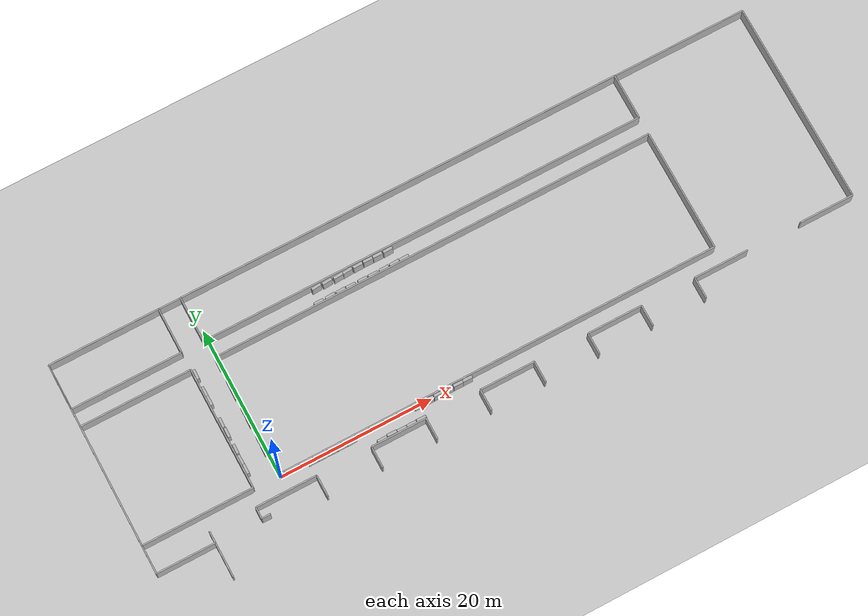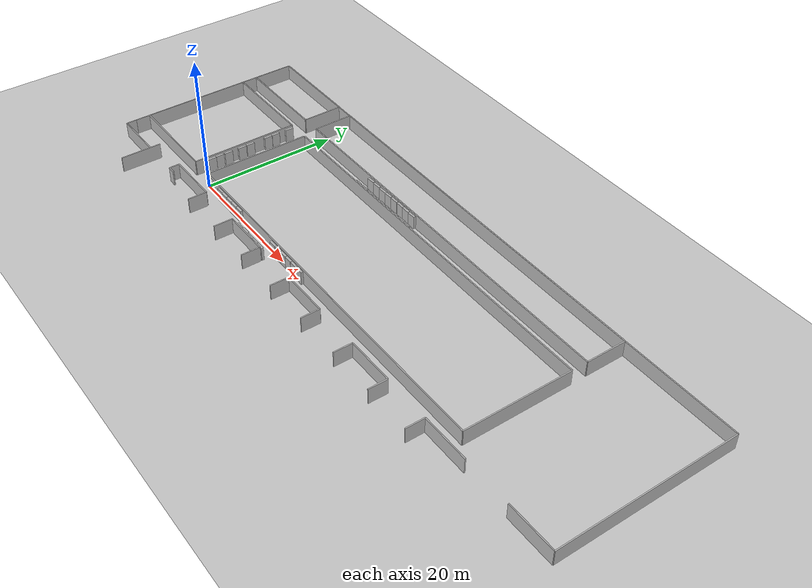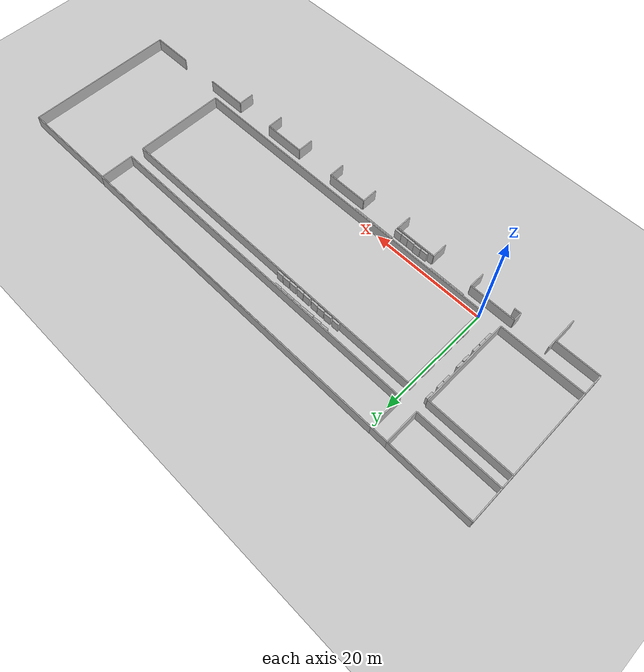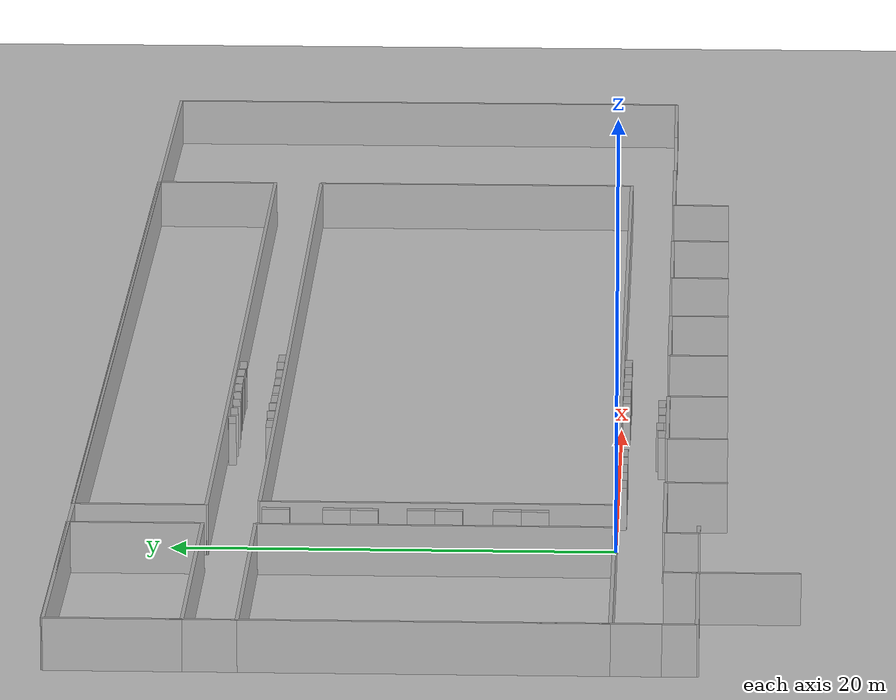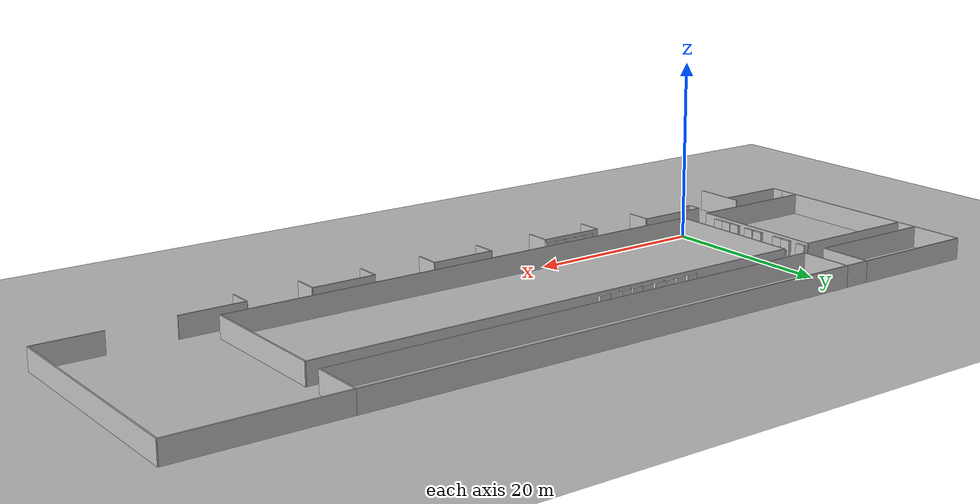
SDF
<sdf version="1.6">
 <world name="default">
  <model name="ground_plane">
   <static>1</static>
   <link name="link">
    <collision name="collision">
     <geometry><plane><normal>0 0 1</normal><size>100 100</size></plane></geometry>
     <surface><friction><ode><mu>100</mu><mu2>50</mu2></ode></friction></surface>
    </collision>
    <visual name="visual">
     <cast_shadows>0</cast_shadows>
     <geometry><plane><normal>0 0 1</normal><size>100 100</size></plane></geometry>
     <material>
      <script><uri>file://media/materials/scripts/gazebo.material</uri><name>Gazebo/Grey</name></script>
     </material>
    </visual>
   </link>
  </model>
  <model name="model_0">
   <pose>0 0 1 0 -0 0</pose>
   <link name="Wall_0">
    <pose>28.988 0 0 0 -0 0</pose>
    <collision name="Wall_0_Collision"><geometry><box><size>57.976 0.169 2.5</size></box></geometry></collision>
    <visual name="Wall_0_Visual"><geometry><box><size>57.976 0.169 2.5</size></box></geometry></visual>
   </link>
   <link name="Wall_1">
    <pose>28.988 16 0 0 -0 0</pose>
    <collision name="Wall_1_Collision"><geometry><box><size>57.976 0.169 2.5</size></box></geometry></collision>
    <visual name="Wall_1_Visual"><geometry><box><size>57.976 0.169 2.5</size></box></geometry></visual>
   </link>
   <link name="Wall_2">
    <pose>0 8 0 0 -0 1.5707</pose>
    <collision name="Wall_2_Collision"><geometry><box><size>16 0.169 2.5</size></box></geometry></collision>
    <visual name="Wall_2_Visual"><geometry><box><size>16 0.169 2.5</size></box></geometry></visual>
   </link>
   <link name="Wall_3">
    <pose>57.976 8 0 0 -0 1.5707</pose>
    <collision name="Wall_3_Collision"><geometry><box><size>16 0.169 2.5</size></box></geometry></collision>
    <visual name="Wall_3_Visual"><geometry><box><size>16 0.169 2.5</size></box></geometry></visual>
   </link>
   <static>1</static>
  </model>
  <model name="model_2">
   <pose>-17.962 0 1 0 -0 0</pose>
   <link name="Wall_0">
    <pose>7.219 0 0 0 -0 0</pose>
    <collision name="Wall_0_Collision"><geometry><box><size>14.438 0.169 2.5</size></box></geometry></collision>
    <visual name="Wall_0_Visual"><geometry><box><size>14.438 0.169 2.5</size></box></geometry></visual>
   </link>
   <link name="Wall_1">
    <pose>7.219 16 0 0 -0 0</pose>
    <collision name="Wall_1_Collision"><geometry><box><size>14.438 0.169 2.5</size></box></geometry></collision>
    <visual name="Wall_1_Visual"><geometry><box><size>14.438 0.169 2.5</size></box></geometry></visual>
   </link>
   <link name="Wall_2">
    <pose>0 8 0 0 -0 1.5707</pose>
    <collision name="Wall_2_Collision"><geometry><box><size>16 0.169 2.5</size></box></geometry></collision>
    <visual name="Wall_2_Visual"><geometry><box><size>16 0.169 2.5</size></box></geometry></visual>
   </link>
   <link name="Wall_3">
    <pose>14.438 8 0 0 -0 1.5707</pose>
    <collision name="Wall_3_Collision"><geometry><box><size>16 0.169 2.5</size></box></geometry></collision>
    <visual name="Wall_3_Visual"><geometry><box><size>16 0.169 2.5</size></box></geometry></visual>
   </link>
   <static>1</static>
  </model>
  <model name="model_3">
   <pose>-17.962 18.362 1 0 -0 0</pose>
   <link name="Wall_0">
    <pose>7.219 0 0 0 -0 0</pose>
    <collision name="Wall_0_Collision"><geometry><box><size>14.438 0.169 2.5</size></box></geometry></collision>
    <visual name="Wall_0_Visual"><geometry><box><size>14.438 0.169 2.5</size></box></geometry></visual>
   </link>
   <link name="Wall_1">
    <pose>7.219 6 0 0 -0 0</pose>
    <collision name="Wall_1_Collision"><geometry><box><size>14.438 0.169 2.5</size></box></geometry></collision>
    <visual name="Wall_1_Visual"><geometry><box><size>14.438 0.169 2.5</size></box></geometry></visual>
   </link>
   <link name="Wall_2">
    <pose>0 3 0 0 -0 1.5707</pose>
    <collision name="Wall_2_Collision"><geometry><box><size>6 0.169 2.5</size></box></geometry></collision>
    <visual name="Wall_2_Visual"><geometry><box><size>6 0.169 2.5</size></box></geometry></visual>
   </link>
   <link name="Wall_3">
    <pose>14.438 3 0 0 -0 1.5707</pose>
    <collision name="Wall_3_Collision"><geometry><box><size>6 0.169 2.5</size></box></geometry></collision>
    <visual name="Wall_3_Visual"><geometry><box><size>6 0.169 2.5</size></box></geometry></visual>
   </link>
   <static>1</static>
  </model>
  <model name="model_4">
   <pose>-0.636 18.362 1 0 -0 0</pose>
   <link name="Wall_0">
    <pose>29.306 0 0 0 -0 0</pose>
    <collision name="Wall_0_Collision"><geometry><box><size>58.612 0.169 2.5</size></box></geometry></collision>
    <visual name="Wall_0_Visual"><geometry><box><size>58.612 0.169 2.5</size></box></geometry></visual>
   </link>
   <link name="Wall_1">
    <pose>29.306 6 0 0 -0 0</pose>
    <collision name="Wall_1_Collision"><geometry><box><size>58.612 0.169 2.5</size></box></geometry></collision>
    <visual name="Wall_1_Visual"><geometry><box><size>58.612 0.169 2.5</size></box></geometry></visual>
   </link>
   <link name="Wall_2">
    <pose>0 3 0 0 -0 1.5707</pose>
    <collision name="Wall_2_Collision"><geometry><box><size>6 0.169 2.5</size></box></geometry></collision>
    <visual name="Wall_2_Visual"><geometry><box><size>6 0.169 2.5</size></box></geometry></visual>
   </link>
   <link name="Wall_3">
    <pose>58.612 3 0 0 -0 1.5707</pose>
    <collision name="Wall_3_Collision"><geometry><box><size>6 0.169 2.5</size></box></geometry></collision>
    <visual name="Wall_3_Visual"><geometry><box><size>6 0.169 2.5</size></box></geometry></visual>
   </link>
   <static>1</static>
  </model>
  <model name="model_6">
   <pose>-17.962 -2.202 1 0 -0 0</pose>
   <link name="Wall_0">
    <pose>0 -0.755 0 0 -0 1.5707</pose>
    <collision name="Wall_0_Collision"><geometry><box><size>1.51 0.169 2.5</size></box></geometry></collision>
    <visual name="Wall_0_Visual"><geometry><box><size>1.51 0.169 2.5</size></box></geometry></visual>
   </link>
   <link name="Wall_1">
    <pose>3.809 -1.51 0 0 -0 0</pose>
    <collision name="Wall_1_Collision"><geometry><box><size>7.618 0.169 2.5</size></box></geometry></collision>
    <visual name="Wall_1_Visual"><geometry><box><size>7.618 0.169 2.5</size></box></geometry></visual>
   </link>
   <link name="Wall_2">
    <pose>7.618 -3.005 0 0 -0 1.5707</pose>
    <collision name="Wall_2_Collision"><geometry><box><size>6.01 0.169 2.5</size></box></geometry></collision>
    <visual name="Wall_2_Visual"><geometry><box><size>6.01 0.169 2.5</size></box></geometry></visual>
   </link>
   <link name="Wall_3">
    <pose>13.638 -0.755 0 0 -0 1.5707</pose>
    <collision name="Wall_3_Collision"><geometry><box><size>1.51 0.169 2.5</size></box></geometry></collision>
    <visual name="Wall_3_Visual"><geometry><box><size>1.51 0.169 2.5</size></box></geometry></visual>
   </link>
   <link name="Wall_4">
    <pose>14.214 -1.51 0 0 -0 0</pose>
    <collision name="Wall_4_Collision"><geometry><box><size>1.152 0.169 2.5</size></box></geometry></collision>
    <visual name="Wall_4_Visual"><geometry><box><size>1.152 0.169 2.5</size></box></geometry></visual>
   </link>
   <link name="Wall_5">
    <pose>17.619 0 0 0 -0 0</pose>
    <collision name="Wall_5_Collision"><geometry><box><size>7.962 0.169 2.5</size></box></geometry></collision>
    <visual name="Wall_5_Visual"><geometry><box><size>7.962 0.169 2.5</size></box></geometry></visual>
   </link>
   <link name="Wall_6">
    <pose>21.6 -1.39375 0 0 -0 1.5707</pose>
    <collision name="Wall_6_Collision"><geometry><box><size>2.7875 0.169 2.5</size></box></geometry></collision>
    <visual name="Wall_6_Visual"><geometry><box><size>2.7875 0.169 2.5</size></box></geometry></visual>
   </link>
   <link name="Wall_7">
    <pose>28.8 -1.39375 0 0 -0 1.5707</pose>
    <collision name="Wall_7_Collision"><geometry><box><size>2.7875 0.169 2.5</size></box></geometry></collision>
    <visual name="Wall_7_Visual"><geometry><box><size>2.7875 0.169 2.5</size></box></geometry></visual>
   </link>
   <link name="Wall_8">
    <pose>32.4 0 0 0 -0 0</pose>
    <collision name="Wall_8_Collision"><geometry><box><size>7.2 0.169 2.5</size></box></geometry></collision>
    <visual name="Wall_8_Visual"><geometry><box><size>7.2 0.169 2.5</size></box></geometry></visual>
   </link>
   <link name="Wall_9">
    <pose>36 -1.39375 0 0 -0 1.5707</pose>
    <collision name="Wall_9_Collision"><geometry><box><size>2.7875 0.169 2.5</size></box></geometry></collision>
    <visual name="Wall_9_Visual"><geometry><box><size>2.7875 0.169 2.5</size></box></geometry></visual>
   </link>
   <link name="Wall_10">
    <pose>43.2 -1.39375 0 0 -0 1.5707</pose>
    <collision name="Wall_10_Collision"><geometry><box><size>2.7875 0.169 2.5</size></box></geometry></collision>
    <visual name="Wall_10_Visual"><geometry><box><size>2.7875 0.169 2.5</size></box></geometry></visual>
   </link>
   <link name="Wall_11">
    <pose>46.8 0 0 0 -0 0</pose>
    <collision name="Wall_11_Collision"><geometry><box><size>7.2 0.169 2.5</size></box></geometry></collision>
    <visual name="Wall_11_Visual"><geometry><box><size>7.2 0.169 2.5</size></box></geometry></visual>
   </link>
   <link name="Wall_12">
    <pose>50.4 -1.39375 0 0 -0 1.5707</pose>
    <collision name="Wall_12_Collision"><geometry><box><size>2.7875 0.169 2.5</size></box></geometry></collision>
    <visual name="Wall_12_Visual"><geometry><box><size>2.7875 0.169 2.5</size></box></geometry></visual>
   </link>
   <link name="Wall_13">
    <pose>57.6 -1.39375 0 0 -0 1.5707</pose>
    <collision name="Wall_13_Collision"><geometry><box><size>2.7875 0.169 2.5</size></box></geometry></collision>
    <visual name="Wall_13_Visual"><geometry><box><size>2.7875 0.169 2.5</size></box></geometry></visual>
   </link>
   <link name="Wall_14">
    <pose>61.2 0 0 0 -0 0</pose>
    <collision name="Wall_14_Collision"><geometry><box><size>7.2 0.169 2.5</size></box></geometry></collision>
    <visual name="Wall_14_Visual"><geometry><box><size>7.2 0.169 2.5</size></box></geometry></visual>
   </link>
   <link name="Wall_15">
    <pose>64.8 -1.39375 0 0 -0 1.5707</pose>
    <collision name="Wall_15_Collision"><geometry><box><size>2.7875 0.169 2.5</size></box></geometry></collision>
    <visual name="Wall_15_Visual"><geometry><box><size>2.7875 0.169 2.5</size></box></geometry></visual>
   </link>
   <link name="Wall_16">
    <pose>72 -1.39375 0 0 -0 1.5707</pose>
    <collision name="Wall_16_Collision"><geometry><box><size>2.7875 0.169 2.5</size></box></geometry></collision>
    <visual name="Wall_16_Visual"><geometry><box><size>2.7875 0.169 2.5</size></box></geometry></visual>
   </link>
   <link name="Wall_17">
    <pose>75.6 0 0 0 -0 0</pose>
    <collision name="Wall_17_Collision"><geometry><box><size>7.2 0.169 2.5</size></box></geometry></collision>
    <visual name="Wall_17_Visual"><geometry><box><size>7.2 0.169 2.5</size></box></geometry></visual>
   </link>
   <link name="Wall_18">
    <pose>90 0 0 0 -0 0</pose>
    <collision name="Wall_18_Collision"><geometry><box><size>7.2 0.169 2.5</size></box></geometry></collision>
    <visual name="Wall_18_Visual"><geometry><box><size>7.2 0.169 2.5</size></box></geometry></visual>
   </link>
   <static>1</static>
  </model>
  <model name="model_7">
   <pose>-17.962 -2.202 1 0 -0 0</pose>
   <link name="Wall_0">
    <pose>0 13.27 0 0 -0 1.5707</pose>
    <collision name="Wall_0_Collision"><geometry><box><size>26.54 0.16 2.5</size></box></geometry></collision>
    <visual name="Wall_0_Visual"><geometry><box><size>26.54 0.16 2.5</size></box></geometry></visual>
   </link>
   <link name="Wall_1">
    <pose>46.8 26.54 0 0 -0 0</pose>
    <collision name="Wall_1_Collision"><geometry><box><size>93.6 0.16 2.5</size></box></geometry></collision>
    <visual name="Wall_1_Visual"><geometry><box><size>93.6 0.16 2.5</size></box></geometry></visual>
   </link>
   <link name="Wall_3">
    <pose>93.6 13.27 0 0 -0 1.5707</pose>
    <collision name="Wall_3_Collision"><geometry><box><size>26.54 0.16 2.5</size></box></geometry></collision>
    <visual name="Wall_3_Visual"><geometry><box><size>26.54 0.16 2.5</size></box></geometry></visual>
   </link>
   <static>1</static>
  </model>
  <model name="unit_box_clone_1">
   <pose>13.7109 -1.85674 0.999996 0 6e-06 -5.9e-05</pose>
   <link name="link">
    <inertial>
     <mass>1</mass>
     <inertia>
      <ixx>0.166667</ixx>
      <ixy>0</ixy>
      <ixz>0</ixz>
      <iyy>0.166667</iyy>
      <iyz>0</iyz>
      <izz>0.166667</izz>
     </inertia>
    </inertial>
    <collision name="collision"><geometry><box><size>1.25 0.35 2</size></box></geometry></collision>
    <visual name="visual"><geometry><box><size>1.25 0.35 2</size></box></geometry></visual>
   </link>
  </model>
  <model name="unit_box_clone">
   <pose>22.0074 -0.27117 0.999996 -0 -6e-06 -4.9e-05</pose>
   <link name="link">
    <inertial>
     <mass>1</mass>
     <inertia>
      <ixx>0.166667</ixx>
      <ixy>0</ixy>
      <ixz>0</ixz>
      <iyy>0.166667</iyy>
      <iyz>0</iyz>
      <izz>0.166667</izz>
     </inertia>
    </inertial>
    <collision name="collision"><geometry><box><size>1.25 0.35 2</size></box></geometry></collision>
    <visual name="visual"><geometry><box><size>1.25 0.35 2</size></box></geometry></visual>
   </link>
  </model>
  <model name="unit_box_clone_11_clone_14">
   <pose>23.711 18.0787 0.999995 0 -2e-06 0.037657</pose>
   <link name="link">
    <inertial>
     <mass>1</mass>
     <inertia>
      <ixx>0.166667</ixx>
      <ixy>0</ixy>
      <ixz>0</ixz>
      <iyy>0.166667</iyy>
      <iyz>0</iyz>
      <izz>0.166667</izz>
     </inertia>
    </inertial>
    <collision name="collision"><geometry><box><size>1.25 0.35 2</size></box></geometry></collision>
    <visual name="visual"><geometry><box><size>1.25 0.35 2</size></box></geometry></visual>
   </link>
  </model>
  <model name="unit_box_clone_11_clone_15">
   <pose>23.6489 16.3031 1 1e-06 0 0.068985</pose>
   <link name="link">
    <inertial>
     <mass>1</mass>
     <inertia>
      <ixx>0.166667</ixx>
      <ixy>0</ixy>
      <ixz>0</ixz>
      <iyy>0.166667</iyy>
      <iyz>0</iyz>
      <izz>0.166667</izz>
     </inertia>
    </inertial>
    <collision name="collision"><geometry><box><size>1.25 0.35 2</size></box></geometry></collision>
    <visual name="visual"><geometry><box><size>1.25 0.35 2</size></box></geometry></visual>
   </link>
  </model>
  <model name="unit_box_clone_11_clone_16">
   <pose>22.3421 18.1015 0.999996 0 6e-06 -4.9e-05</pose>
   <link name="link">
    <inertial>
     <mass>1</mass>
     <inertia>
      <ixx>0.166667</ixx>
      <ixy>0</ixy>
      <ixz>0</ixz>
      <iyy>0.166667</iyy>
      <iyz>0</iyz>
      <izz>0.166667</izz>
     </inertia>
    </inertial>
    <collision name="collision"><geometry><box><size>1.25 0.35 2</size></box></geometry></collision>
    <visual name="visual"><geometry><box><size>1.25 0.35 2</size></box></geometry></visual>
   </link>
  </model>
  <model name="unit_box_clone_11_clone_17">
   <pose>22.2418 16.2769 0.999998 0 -4e-06 0.027685</pose>
   <link name="link">
    <inertial>
     <mass>1</mass>
     <inertia>
      <ixx>0.166667</ixx>
      <ixy>0</ixy>
      <ixz>0</ixz>
      <iyy>0.166667</iyy>
      <iyz>0</iyz>
      <izz>0.166667</izz>
     </inertia>
    </inertial>
    <collision name="collision"><geometry><box><size>1.25 0.35 2</size></box></geometry></collision>
    <visual name="visual"><geometry><box><size>1.25 0.35 2</size></box></geometry></visual>
   </link>
  </model>
  <model name="unit_box_clone_11_clone_18">
   <pose>20.7664 16.2598 0.999996 -0 6e-06 -1.6e-05</pose>
   <link name="link">
    <inertial>
     <mass>1</mass>
     <inertia>
      <ixx>0.166667</ixx>
      <ixy>0</ixy>
      <ixz>0</ixz>
      <iyy>0.166667</iyy>
      <iyz>0</iyz>
      <izz>0.166667</izz>
     </inertia>
    </inertial>
    <collision name="collision"><geometry><box><size>1.25 0.35 2</size></box></geometry></collision>
    <visual name="visual"><geometry><box><size>1.25 0.35 2</size></box></geometry></visual>
   </link>
  </model>
  <model name="unit_box_clone_11_clone_19">
   <pose>21.0428 18.1013 0.999996 0 6e-06 6.1e-05</pose>
   <link name="link">
    <inertial>
     <mass>1</mass>
     <inertia>
      <ixx>0.166667</ixx>
      <ixy>0</ixy>
      <ixz>0</ixz>
      <iyy>0.166667</iyy>
      <iyz>0</iyz>
      <izz>0.166667</izz>
     </inertia>
    </inertial>
    <collision name="collision"><geometry><box><size>1.25 0.35 2</size></box></geometry></collision>
    <visual name="visual"><geometry><box><size>1.25 0.35 2</size></box></geometry></visual>
   </link>
  </model>
  <model name="unit_box_clone_11_clone_20">
   <pose>19.4063 16.2596 0.999996 0 -6e-06 -4.2e-05</pose>
   <link name="link">
    <inertial>
     <mass>1</mass>
     <inertia>
      <ixx>0.166667</ixx>
      <ixy>0</ixy>
      <ixz>0</ixz>
      <iyy>0.166667</iyy>
      <iyz>0</iyz>
      <izz>0.166667</izz>
     </inertia>
    </inertial>
    <collision name="collision"><geometry><box><size>1.25 0.35 2</size></box></geometry></collision>
    <visual name="visual"><geometry><box><size>1.25 0.35 2</size></box></geometry></visual>
   </link>
  </model>
  <model name="unit_box_clone_11_clone_21">
   <pose>17.8003 16.2604 0.999996 0 -2e-06 -8.2e-05</pose>
   <link name="link">
    <inertial>
     <mass>1</mass>
     <inertia>
      <ixx>0.166667</ixx>
      <ixy>0</ixy>
      <ixz>0</ixz>
      <iyy>0.166667</iyy>
      <iyz>0</iyz>
      <izz>0.166667</izz>
     </inertia>
    </inertial>
    <collision name="collision"><geometry><box><size>1.25 0.35 2</size></box></geometry></collision>
    <visual name="visual"><geometry><box><size>1.25 0.35 2</size></box></geometry></visual>
   </link>
  </model>
  <model name="unit_box_clone_11_clone_22">
   <pose>19.6929 18.0816 0.999997 0 -5e-06 0.033077</pose>
   <link name="link">
    <inertial>
     <mass>1</mass>
     <inertia>
      <ixx>0.166667</ixx>
      <ixy>0</ixy>
      <ixz>0</ixz>
      <iyy>0.166667</iyy>
      <iyz>0</iyz>
      <izz>0.166667</izz>
     </inertia>
    </inertial>
    <collision name="collision"><geometry><box><size>1.25 0.35 2</size></box></geometry></collision>
    <visual name="visual"><geometry><box><size>1.25 0.35 2</size></box></geometry></visual>
   </link>
  </model>
  <model name="unit_box_clone_11_clone_23">
   <pose>18.2945 18.0562 0.999998 0 3e-06 0.073835</pose>
   <link name="link">
    <inertial>
     <mass>1</mass>
     <inertia>
      <ixx>0.166667</ixx>
      <ixy>0</ixy>
      <ixz>0</ixz>
      <iyy>0.166667</iyy>
      <iyz>0</iyz>
      <izz>0.166667</izz>
     </inertia>
    </inertial>
    <collision name="collision"><geometry><box><size>1.25 0.35 2</size></box></geometry></collision>
    <visual name="visual"><geometry><box><size>1.25 0.35 2</size></box></geometry></visual>
   </link>
  </model>
  <model name="unit_box_clone_11_clone_24">
   <pose>17.0436 18.0196 0.999997 0 -4e-06 0.073693</pose>
   <link name="link">
    <inertial>
     <mass>1</mass>
     <inertia>
      <ixx>0.166667</ixx>
      <ixy>0</ixy>
      <ixz>0</ixz>
      <iyy>0.166667</iyy>
      <iyz>0</iyz>
      <izz>0.166667</izz>
     </inertia>
    </inertial>
    <collision name="collision"><geometry><box><size>1.25 0.35 2</size></box></geometry></collision>
    <visual name="visual"><geometry><box><size>1.25 0.35 2</size></box></geometry></visual>
   </link>
  </model>
  <model name="unit_box_clone_11_clone_25">
   <pose>16.4932 16.2862 1 0 -0 0.042515</pose>
   <link name="link">
    <inertial>
     <mass>1</mass>
     <inertia>
      <ixx>0.166667</ixx>
      <ixy>0</ixy>
      <ixz>0</ixz>
      <iyy>0.166667</iyy>
      <iyz>0</iyz>
      <izz>0.166667</izz>
     </inertia>
    </inertial>
    <collision name="collision"><geometry><box><size>1.25 0.35 2</size></box></geometry></collision>
    <visual name="visual"><geometry><box><size>1.25 0.35 2</size></box></geometry></visual>
   </link>
  </model>
  <model name="unit_box_clone_11_clone_26">
   <pose>15.5675 18.0384 1 0 -0 0.075277</pose>
   <link name="link">
    <inertial>
     <mass>1</mass>
     <inertia>
      <ixx>0.166667</ixx>
      <ixy>0</ixy>
      <ixz>0</ixz>
      <iyy>0.166667</iyy>
      <iyz>0</iyz>
      <izz>0.166667</izz>
     </inertia>
    </inertial>
    <collision name="collision"><geometry><box><size>1.25 0.35 2</size></box></geometry></collision>
    <visual name="visual"><geometry><box><size>1.25 0.35 2</size></box></geometry></visual>
   </link>
  </model>
  <model name="unit_box_clone_11_clone_27">
   <pose>15.0677 16.2994 1 0 -0 0.060356</pose>
   <link name="link">
    <inertial>
     <mass>1</mass>
     <inertia>
      <ixx>0.166667</ixx>
      <ixy>0</ixy>
      <ixz>0</ixz>
      <iyy>0.166667</iyy>
      <iyz>0</iyz>
      <izz>0.166667</izz>
     </inertia>
    </inertial>
    <collision name="collision"><geometry><box><size>1.25 0.35 2</size></box></geometry></collision>
    <visual name="visual"><geometry><box><size>1.25 0.35 2</size></box></geometry></visual>
   </link>
  </model>
  <model name="unit_box_clone_11_clone_28">
   <pose>14.1457 18.0566 1 0 -0 0.071586</pose>
   <link name="link">
    <inertial>
     <mass>1</mass>
     <inertia>
      <ixx>0.166667</ixx>
      <ixy>0</ixy>
      <ixz>0</ixz>
      <iyy>0.166667</iyy>
      <iyz>0</iyz>
      <izz>0.166667</izz>
     </inertia>
    </inertial>
    <collision name="collision"><geometry><box><size>1.25 0.35 2</size></box></geometry></collision>
    <visual name="visual"><geometry><box><size>1.25 0.35 2</size></box></geometry></visual>
   </link>
  </model>
  <model name="unit_box_clone_11_clone_29">
   <pose>13.536 16.2707 0.999996 -0 -2e-06 0.017689</pose>
   <link name="link">
    <inertial>
     <mass>1</mass>
     <inertia>
      <ixx>0.166667</ixx>
      <ixy>0</ixy>
      <ixz>0</ixz>
      <iyy>0.166667</iyy>
      <iyz>0</iyz>
      <izz>0.166667</izz>
     </inertia>
    </inertial>
    <collision name="collision"><geometry><box><size>1.25 0.35 2</size></box></geometry></collision>
    <visual name="visual"><geometry><box><size>1.25 0.35 2</size></box></geometry></visual>
   </link>
  </model>
  <model name="unit_box_clone_1_clone">
   <pose>6.68095 -0.260339 0.999996 -0 6e-06 4.9e-05</pose>
   <link name="link">
    <inertial>
     <mass>1</mass>
     <inertia>
      <ixx>0.166667</ixx>
      <ixy>0</ixy>
      <ixz>0</ixz>
      <iyy>0.166667</iyy>
      <iyz>0</iyz>
      <izz>0.166667</izz>
     </inertia>
    </inertial>
    <collision name="collision"><geometry><box><size>1.25 0.35 2</size></box></geometry></collision>
    <visual name="visual"><geometry><box><size>1.25 0.35 2</size></box></geometry></visual>
   </link>
  </model>
  <model name="unit_box_clone_1_clone_0">
   <pose>5.39075 -0.263233 0.999998 0 4e-06 0.003933</pose>
   <link name="link">
    <inertial>
     <mass>1</mass>
     <inertia>
      <ixx>0.166667</ixx>
      <ixy>0</ixy>
      <ixz>0</ixz>
      <iyy>0.166667</iyy>
      <iyz>0</iyz>
      <izz>0.166667</izz>
     </inertia>
    </inertial>
    <collision name="collision"><geometry><box><size>1.25 0.35 2</size></box></geometry></collision>
    <visual name="visual"><geometry><box><size>1.25 0.35 2</size></box></geometry></visual>
   </link>
  </model>
  <model name="unit_box_clone_1_clone_1">
   <pose>7.94834 -0.260406 0.999996 -0 2e-06 -7.7e-05</pose>
   <link name="link">
    <inertial>
     <mass>1</mass>
     <inertia>
      <ixx>0.166667</ixx>
      <ixy>0</ixy>
      <ixz>0</ixz>
      <iyy>0.166667</iyy>
      <iyz>0</iyz>
      <izz>0.166667</izz>
     </inertia>
    </inertial>
    <collision name="collision"><geometry><box><size>1.25 0.35 2</size></box></geometry></collision>
    <visual name="visual"><geometry><box><size>1.25 0.35 2</size></box></geometry></visual>
   </link>
  </model>
  <model name="unit_box_clone_1_clone_2">
   <pose>12.3948 -1.94213 1 1e-06 -0 -2.1e-05</pose>
   <link name="link">
    <inertial>
     <mass>1</mass>
     <inertia>
      <ixx>0.166667</ixx>
      <ixy>0</ixy>
      <ixz>0</ixz>
      <iyy>0.166667</iyy>
      <iyz>0</iyz>
      <izz>0.166667</izz>
     </inertia>
    </inertial>
    <collision name="collision"><geometry><box><size>1.25 0.35 2</size></box></geometry></collision>
    <visual name="visual"><geometry><box><size>1.25 0.35 2</size></box></geometry></visual>
   </link>
  </model>
  <model name="unit_box_clone_1_clone_3">
   <pose>14.9959 -1.94196 0.999996 -0 -6e-06 -4.9e-05</pose>
   <link name="link">
    <inertial>
     <mass>1</mass>
     <inertia>
      <ixx>0.166667</ixx>
      <ixy>0</ixy>
      <ixz>0</ixz>
      <iyy>0.166667</iyy>
      <iyz>0</iyz>
      <izz>0.166667</izz>
     </inertia>
    </inertial>
    <collision name="collision"><geometry><box><size>1.25 0.35 2</size></box></geometry></collision>
    <visual name="visual"><geometry><box><size>1.25 0.35 2</size></box></geometry></visual>
   </link>
  </model>
  <model name="unit_box_clone_1_clone_4">
   <pose>16.2794 -1.94101 0.999996 0 -6e-06 -2.4e-05</pose>
   <link name="link">
    <inertial>
     <mass>1</mass>
     <inertia>
      <ixx>0.166667</ixx>
      <ixy>0</ixy>
      <ixz>0</ixz>
      <iyy>0.166667</iyy>
      <iyz>0</iyz>
      <izz>0.166667</izz>
     </inertia>
    </inertial>
    <collision name="collision"><geometry><box><size>1.25 0.35 2</size></box></geometry></collision>
    <visual name="visual"><geometry><box><size>1.25 0.35 2</size></box></geometry></visual>
   </link>
  </model>
  <model name="unit_box_clone_1_clone_5">
   <pose>17.5697 -1.92554 0.999996 0 -6e-06 -4.8e-05</pose>
   <link name="link">
    <inertial>
     <mass>1</mass>
     <inertia>
      <ixx>0.166667</ixx>
      <ixy>0</ixy>
      <ixz>0</ixz>
      <iyy>0.166667</iyy>
      <iyz>0</iyz>
      <izz>0.166667</izz>
     </inertia>
    </inertial>
    <collision name="collision"><geometry><box><size>1.25 0.35 2</size></box></geometry></collision>
    <visual name="visual"><geometry><box><size>1.25 0.35 2</size></box></geometry></visual>
   </link>
  </model>
  <model name="unit_box_clone_1_clone_11">
   <pose>20.7352 -0.259681 1 0 0 -0.00018</pose>
   <link name="link">
    <inertial>
     <mass>1</mass>
     <inertia>
      <ixx>0.166667</ixx>
      <ixy>0</ixy>
      <ixz>0</ixz>
      <iyy>0.166667</iyy>
      <iyz>0</iyz>
      <izz>0.166667</izz>
     </inertia>
    </inertial>
    <collision name="collision"><geometry><box><size>1.25 0.35 2</size></box></geometry></collision>
    <visual name="visual"><geometry><box><size>1.25 0.35 2</size></box></geometry></visual>
   </link>
  </model>
  <model name="unit_box_clone_1_clone_12">
   <pose>19.4335 -0.259729 0.999996 0 6e-06 9.4e-05</pose>
   <link name="link">
    <inertial>
     <mass>1</mass>
     <inertia>
      <ixx>0.166667</ixx>
      <ixy>0</ixy>
      <ixz>0</ixz>
      <iyy>0.166667</iyy>
      <iyz>0</iyz>
      <izz>0.166667</izz>
     </inertia>
    </inertial>
    <collision name="collision"><geometry><box><size>1.25 0.35 2</size></box></geometry></collision>
    <visual name="visual"><geometry><box><size>1.25 0.35 2</size></box></geometry></visual>
   </link>
  </model>
  <model name="unit_box_clone_1_clone_13">
   <pose>23.3214 -0.269494 1 -1e-06 0 3.1e-05</pose>
   <link name="link">
    <inertial>
     <mass>1</mass>
     <inertia>
      <ixx>0.166667</ixx>
      <ixy>0</ixy>
      <ixz>0</ixz>
      <iyy>0.166667</iyy>
      <iyz>0</iyz>
      <izz>0.166667</izz>
     </inertia>
    </inertial>
    <collision name="collision"><geometry><box><size>1.25 0.35 2</size></box></geometry></collision>
    <visual name="visual"><geometry><box><size>1.25 0.35 2</size></box></geometry></visual>
   </link>
  </model>
  <model name="unit_box_clone_1_clone_14">
   <pose>18.1558 -0.26028 0.999996 0 6e-06 -3.8e-05</pose>
   <link name="link">
    <inertial>
     <mass>1</mass>
     <inertia>
      <ixx>0.166667</ixx>
      <ixy>0</ixy>
      <ixz>0</ixz>
      <iyy>0.166667</iyy>
      <iyz>0</iyz>
      <izz>0.166667</izz>
     </inertia>
    </inertial>
    <collision name="collision"><geometry><box><size>1.25 0.35 2</size></box></geometry></collision>
    <visual name="visual"><geometry><box><size>1.25 0.35 2</size></box></geometry></visual>
   </link>
  </model>
  <model name="unit_box_clone_1_clone_15">
   <pose>24.5836 -0.2628 0.999996 0 -6e-06 2.4e-05</pose>
   <link name="link">
    <inertial>
     <mass>1</mass>
     <inertia>
      <ixx>0.166667</ixx>
      <ixy>0</ixy>
      <ixz>0</ixz>
      <iyy>0.166667</iyy>
      <iyz>0</iyz>
      <izz>0.166667</izz>
     </inertia>
    </inertial>
    <collision name="collision"><geometry><box><size>1.25 0.35 2</size></box></geometry></collision>
    <visual name="visual"><geometry><box><size>1.25 0.35 2</size></box></geometry></visual>
   </link>
  </model>
  <model name="unit_box_clone_1_clone_20">
   <pose>4.13984 -0.260577 1 -1e-06 0 7e-06</pose>
   <link name="link">
    <inertial>
     <mass>1</mass>
     <inertia>
      <ixx>0.166667</ixx>
      <ixy>0</ixy>
      <ixz>0</ixz>
      <iyy>0.166667</iyy>
      <iyz>0</iyz>
      <izz>0.166667</izz>
     </inertia>
    </inertial>
    <collision name="collision"><geometry><box><size>1.25 0.35 2</size></box></geometry></collision>
    <visual name="visual"><geometry><box><size>1.25 0.35 2</size></box></geometry></visual>
   </link>
  </model>
  <model name="unit_box_clone_1_clone_21">
   <pose>9.23231 -0.2601 0.999996 0 6e-06 -3.9e-05</pose>
   <link name="link">
    <inertial>
     <mass>1</mass>
     <inertia>
      <ixx>0.166667</ixx>
      <ixy>0</ixy>
      <ixz>0</ixz>
      <iyy>0.166667</iyy>
      <iyz>0</iyz>
      <izz>0.166667</izz>
     </inertia>
    </inertial>
    <collision name="collision"><geometry><box><size>1.25 0.35 2</size></box></geometry></collision>
    <visual name="visual"><geometry><box><size>1.25 0.35 2</size></box></geometry></visual>
   </link>
  </model>
  <model name="unit_box_clone_1_clone_46">
   <pose>24.9483 16.2925 1 -1e-06 0 2e-06</pose>
   <link name="link">
    <inertial>
     <mass>1</mass>
     <inertia>
      <ixx>0.166667</ixx>
      <ixy>0</ixy>
      <ixz>0</ixz>
      <iyy>0.166667</iyy>
      <iyz>0</iyz>
      <izz>0.166667</izz>
     </inertia>
    </inertial>
    <collision name="collision"><geometry><box><size>1.25 0.35 2</size></box></geometry></collision>
    <visual name="visual"><geometry><box><size>1.25 0.35 2</size></box></geometry></visual>
   </link>
  </model>
  <model name="unit_box_clone_1_clone_56_clone_clone_clone">
   <pose>-0.282192 15.266 0.999998 0 4e-06 -1.59459</pose>
   <link name="link">
    <inertial>
     <mass>1</mass>
     <inertia>
      <ixx>0.166667</ixx>
      <ixy>0</ixy>
      <ixz>0</ixz>
      <iyy>0.166667</iyy>
      <iyz>0</iyz>
      <izz>0.166667</izz>
     </inertia>
    </inertial>
    <collision name="collision"><geometry><box><size>1.25 0.35 2</size></box></geometry></collision>
    <visual name="visual"><geometry><box><size>1.25 0.35 2</size></box></geometry></visual>
   </link>
  </model>
  <model name="unit_box_clone_1_clone_56_clone_clone_clone_0">
   <pose>-3.2183 15.258 0.999997 -0 -5e-06 -1.59392</pose>
   <link name="link">
    <inertial>
     <mass>1</mass>
     <inertia>
      <ixx>0.166667</ixx>
      <ixy>0</ixy>
      <ixz>0</ixz>
      <iyy>0.166667</iyy>
      <iyz>0</iyz>
      <izz>0.166667</izz>
     </inertia>
    </inertial>
    <collision name="collision"><geometry><box><size>1.25 0.35 2</size></box></geometry></collision>
    <visual name="visual"><geometry><box><size>1.25 0.35 2</size></box></geometry></visual>
   </link>
  </model>
  <model name="unit_box_clone_1_clone_56_clone_clone_clone_1">
   <pose>-3.26398 12.9616 0.999998 0 3e-06 -1.57084</pose>
   <link name="link">
    <inertial>
     <mass>1</mass>
     <inertia>
      <ixx>0.166667</ixx>
      <ixy>0</ixy>
      <ixz>0</ixz>
      <iyy>0.166667</iyy>
      <iyz>0</iyz>
      <izz>0.166667</izz>
     </inertia>
    </inertial>
    <collision name="collision"><geometry><box><size>1.25 0.35 2</size></box></geometry></collision>
    <visual name="visual"><geometry><box><size>1.25 0.35 2</size></box></geometry></visual>
   </link>
  </model>
  <model name="unit_box_clone_1_clone_56_clone_clone_clone_2">
   <pose>-0.270222 12.5293 0.999997 0 -5e-06 -1.58827</pose>
   <link name="link">
    <inertial>
     <mass>1</mass>
     <inertia>
      <ixx>0.166667</ixx>
      <ixy>0</ixy>
      <ixz>0</ixz>
      <iyy>0.166667</iyy>
      <iyz>0</iyz>
      <izz>0.166667</izz>
     </inertia>
    </inertial>
    <collision name="collision"><geometry><box><size>1.25 0.35 2</size></box></geometry></collision>
    <visual name="visual"><geometry><box><size>1.25 0.35 2</size></box></geometry></visual>
   </link>
  </model>
  <model name="unit_box_clone_1_clone_56_clone_clone_clone_3">
   <pose>-0.302966 11.2792 0.999998 0 -4e-06 -1.59085</pose>
   <link name="link">
    <inertial>
     <mass>1</mass>
     <inertia>
      <ixx>0.166667</ixx>
      <ixy>0</ixy>
      <ixz>0</ixz>
      <iyy>0.166667</iyy>
      <iyz>0</iyz>
      <izz>0.166667</izz>
     </inertia>
    </inertial>
    <collision name="collision"><geometry><box><size>1.25 0.35 2</size></box></geometry></collision>
    <visual name="visual"><geometry><box><size>1.25 0.35 2</size></box></geometry></visual>
   </link>
  </model>
  <model name="unit_box_clone_1_clone_56_clone_clone_clone_4">
   <pose>-3.26411 11.6884 1 0 -0 -1.57092</pose>
   <link name="link">
    <inertial>
     <mass>1</mass>
     <inertia>
      <ixx>0.166667</ixx>
      <ixy>0</ixy>
      <ixz>0</ixz>
      <iyy>0.166667</iyy>
      <iyz>0</iyz>
      <izz>0.166667</izz>
     </inertia>
    </inertial>
    <collision name="collision"><geometry><box><size>1.25 0.35 2</size></box></geometry></collision>
    <visual name="visual"><geometry><box><size>1.25 0.35 2</size></box></geometry></visual>
   </link>
  </model>
  <model name="unit_box_clone_1_clone_56_clone_clone_clone_5">
   <pose>-0.259439 8.74023 0.999998 0 4e-06 -1.5709</pose>
   <link name="link">
    <inertial>
     <mass>1</mass>
     <inertia>
      <ixx>0.166667</ixx>
      <ixy>0</ixy>
      <ixz>0</ixz>
      <iyy>0.166667</iyy>
      <iyz>0</iyz>
      <izz>0.166667</izz>
     </inertia>
    </inertial>
    <collision name="collision"><geometry><box><size>1.25 0.35 2</size></box></geometry></collision>
    <visual name="visual"><geometry><box><size>1.25 0.35 2</size></box></geometry></visual>
   </link>
  </model>
  <model name="unit_box_clone_1_clone_56_clone_clone_clone_6">
   <pose>-0.295919 7.48399 1 -0 -0 -1.59459</pose>
   <link name="link">
    <inertial>
     <mass>1</mass>
     <inertia>
      <ixx>0.166667</ixx>
      <ixy>0</ixy>
      <ixz>0</ixz>
      <iyy>0.166667</iyy>
      <iyz>0</iyz>
      <izz>0.166667</izz>
     </inertia>
    </inertial>
    <collision name="collision"><geometry><box><size>1.25 0.35 2</size></box></geometry></collision>
    <visual name="visual"><geometry><box><size>1.25 0.35 2</size></box></geometry></visual>
   </link>
  </model>
  <model name="unit_box_clone_1_clone_56_clone_clone_clone_7">
   <pose>-3.21669 8.68153 0.999996 0 -2e-06 -1.59458</pose>
   <link name="link">
    <inertial>
     <mass>1</mass>
     <inertia>
      <ixx>0.166667</ixx>
      <ixy>0</ixy>
      <ixz>0</ixz>
      <iyy>0.166667</iyy>
      <iyz>0</iyz>
      <izz>0.166667</izz>
     </inertia>
    </inertial>
    <collision name="collision"><geometry><box><size>1.25 0.35 2</size></box></geometry></collision>
    <visual name="visual"><geometry><box><size>1.25 0.35 2</size></box></geometry></visual>
   </link>
  </model>
  <model name="unit_box_clone_1_clone_56_clone_clone_clone_8">
   <pose>-3.19755 7.31238 1 0 0 -1.59457</pose>
   <link name="link">
    <inertial>
     <mass>1</mass>
     <inertia>
      <ixx>0.166667</ixx>
      <ixy>0</ixy>
      <ixz>0</ixz>
      <iyy>0.166667</iyy>
      <iyz>0</iyz>
      <izz>0.166667</izz>
     </inertia>
    </inertial>
    <collision name="collision"><geometry><box><size>1.25 0.35 2</size></box></geometry></collision>
    <visual name="visual"><geometry><box><size>1.25 0.35 2</size></box></geometry></visual>
   </link>
  </model>
  <model name="unit_box_clone_1_clone_56_clone_clone_clone_9">
   <pose>-3.21999 5.08275 0.999997 1e-06 5e-06 -1.59456</pose>
   <link name="link">
    <inertial>
     <mass>1</mass>
     <inertia>
      <ixx>0.166667</ixx>
      <ixy>0</ixy>
      <ixz>0</ixz>
      <iyy>0.166667</iyy>
      <iyz>0</iyz>
      <izz>0.166667</izz>
     </inertia>
    </inertial>
    <collision name="collision"><geometry><box><size>1.25 0.35 2</size></box></geometry></collision>
    <visual name="visual"><geometry><box><size>1.25 0.35 2</size></box></geometry></visual>
   </link>
  </model>
  <model name="unit_box_clone_1_clone_56_clone_clone_clone_10">
   <pose>-0.261963 4.87794 0.999989 0 -2e-06 -1.57436</pose>
   <link name="link">
    <inertial>
     <mass>1</mass>
     <inertia>
      <ixx>0.166667</ixx>
      <ixy>0</ixy>
      <ixz>0</ixz>
      <iyy>0.166667</iyy>
      <iyz>0</iyz>
      <izz>0.166667</izz>
     </inertia>
    </inertial>
    <collision name="collision"><geometry><box><size>1.25 0.35 2</size></box></geometry></collision>
    <visual name="visual"><geometry><box><size>1.25 0.35 2</size></box></geometry></visual>
   </link>
  </model>
  <model name="unit_box_clone_1_clone_56_clone_clone_clone_11">
   <pose>-0.318674 3.62644 0.999994 0 -2e-06 -1.58771</pose>
   <link name="link">
    <inertial>
     <mass>1</mass>
     <inertia>
      <ixx>0.166667</ixx>
      <ixy>0</ixy>
      <ixz>0</ixz>
      <iyy>0.166667</iyy>
      <iyz>0</iyz>
      <izz>0.166667</izz>
     </inertia>
    </inertial>
    <collision name="collision"><geometry><box><size>1.25 0.35 2</size></box></geometry></collision>
    <visual name="visual"><geometry><box><size>1.25 0.35 2</size></box></geometry></visual>
   </link>
  </model>
  <model name="unit_box_clone_1_clone_56_clone_clone_clone_12">
   <pose>-3.26345 3.69096 0.999995 0 -2e-06 -1.57322</pose>
   <link name="link">
    <inertial>
     <mass>1</mass>
     <inertia>
      <ixx>0.166667</ixx>
      <ixy>0</ixy>
      <ixz>0</ixz>
      <iyy>0.166667</iyy>
      <iyz>0</iyz>
      <izz>0.166667</izz>
     </inertia>
    </inertial>
    <collision name="collision"><geometry><box><size>1.25 0.35 2</size></box></geometry></collision>
    <visual name="visual"><geometry><box><size>1.25 0.35 2</size></box></geometry></visual>
   </link>
  </model>
  <model name="unit_box_clone_1_clone_56_clone_clone_clone_13">
   <pose>-3.23594 2.43901 1 0 0 -1.58179</pose>
   <link name="link">
    <inertial>
     <mass>1</mass>
     <inertia>
      <ixx>0.166667</ixx>
      <ixy>0</ixy>
      <ixz>0</ixz>
      <iyy>0.166667</iyy>
      <iyz>0</iyz>
      <izz>0.166667</izz>
     </inertia>
    </inertial>
    <collision name="collision"><geometry><box><size>1.25 0.35 2</size></box></geometry></collision>
    <visual name="visual"><geometry><box><size>1.25 0.35 2</size></box></geometry></visual>
   </link>
  </model>
 </world>
</sdf>
